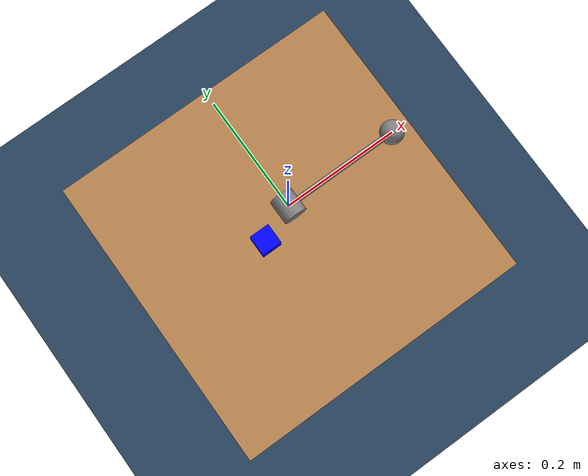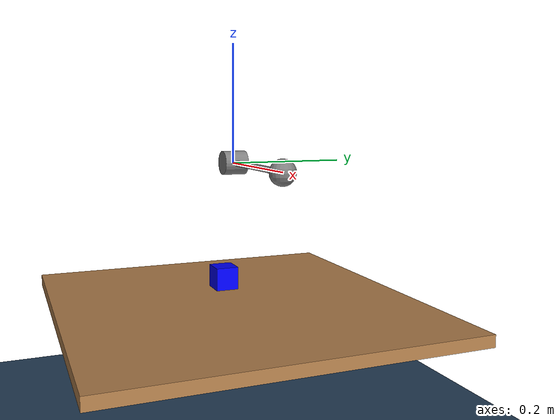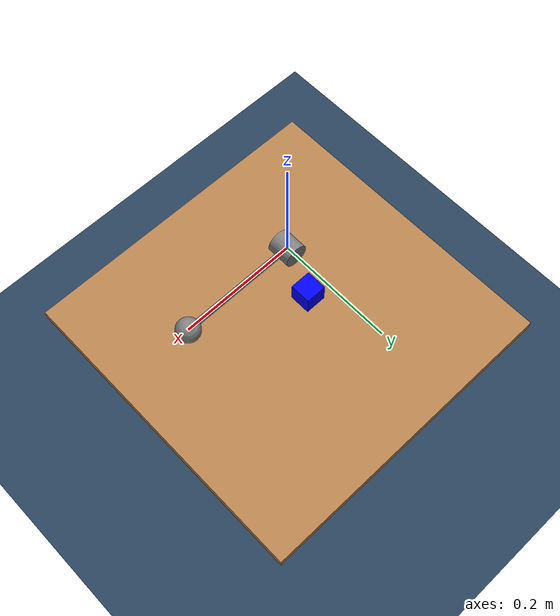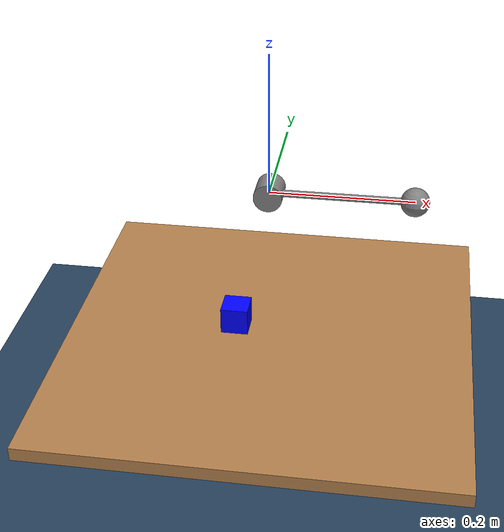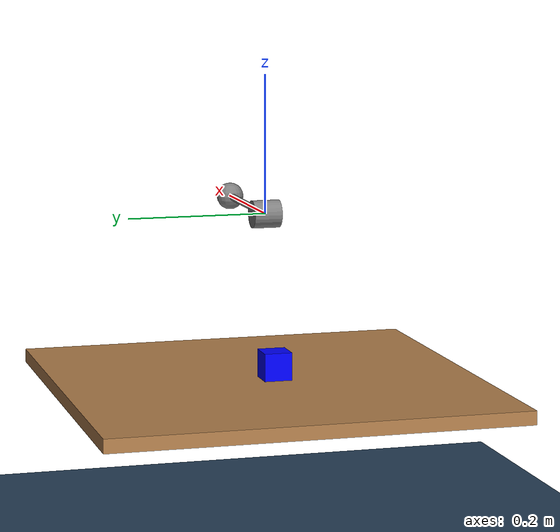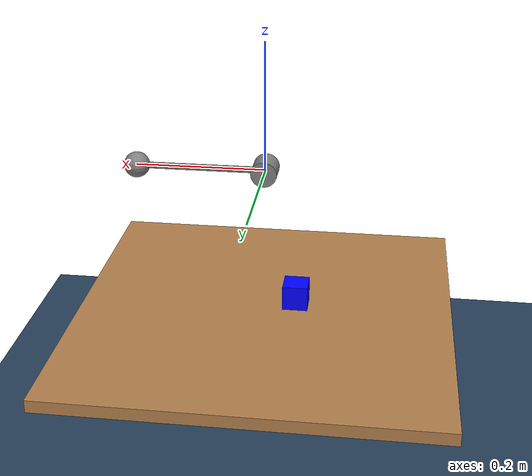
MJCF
<mujoco model="pendulum_puck">
  <option gravity="0 0 -9.81" integrator="RK4" >
    <flag contact="enable" />
  </option>
  <asset>
    <texture name="grid" type="2d" builtin="checker" width="512" height="512" rgb1=".1 .2 .3" rgb2=".2 .3 .4"/>
    <material name="grid" texture="grid" texrepeat="5 5" texuniform="true" reflectance=".2"/>
    <texture name="wood" type="2d" file="assets/wood.png" />
    <material name="wood" texture="wood" />
  </asset>

  <worldbody>
    <light pos="0 0 2"/>
    <geom name="ground" pos="0 0 -.5" type="plane" size="1 1 .01" material="grid" />
    <geom name="table" pos="0 0 -0.25" type="box" size="0.3 0.3 .01" mass="100" friction="0.05 1.0 1.0" material="wood"/>
    <geom name="target" pos="-0.5 0 -.499" type="plane" size="0.05 0.05 .01" rgba="1 0 0 1"/>
    <body>
      <joint name="theta" type="hinge" axis="0 1 0" damping="0.1"/>
      <geom name="pendulum_base" type="cylinder" size="0.02" fromto="0 -.02 0 0 .02 0"/>
      <body>
        <geom name="pendulum_shaft" type="capsule" size="0.005" fromto="0 0 0 .2 0 0"/>
        <body pos="0.2 0 0">
            <geom name="bob" type="sphere" size="0.02" pos="0 0 0" mass="2.0"/>
        </body>
      </body>
    </body>
    <body >
      <joint name="puck_joint" type="free" />
      <geom name="puck" pos="-0.05 0.0 -0.21" type="box" size="0.02 0.02 0.02" mass="1.0" friction="0.05 1.0 1.0" rgba="0 0 1 1"/>
    </body>
  </worldbody>
</mujoco>
